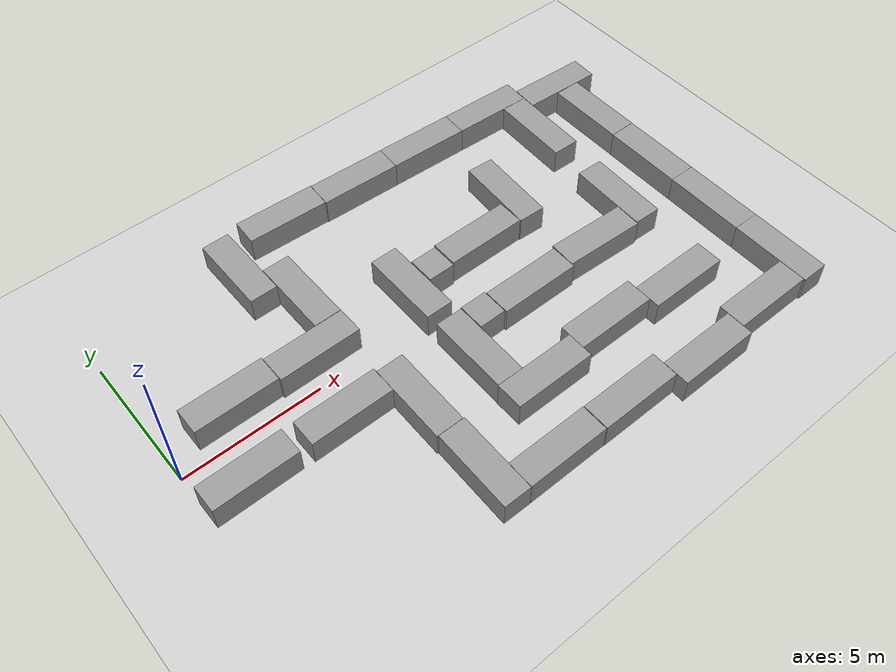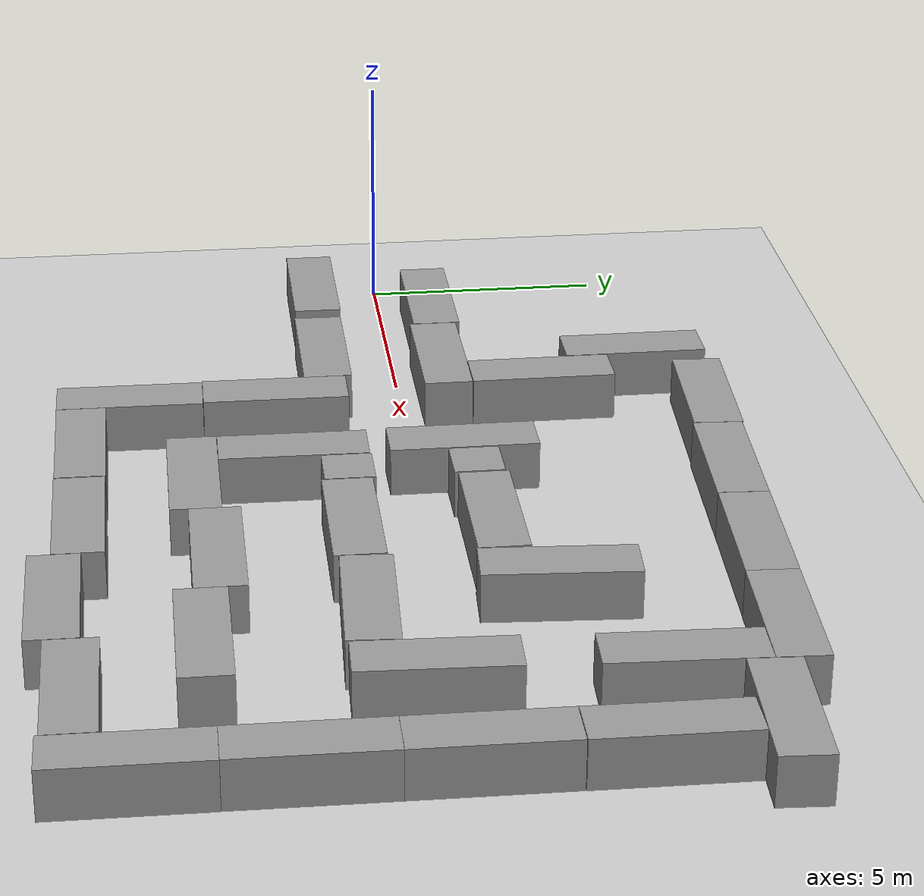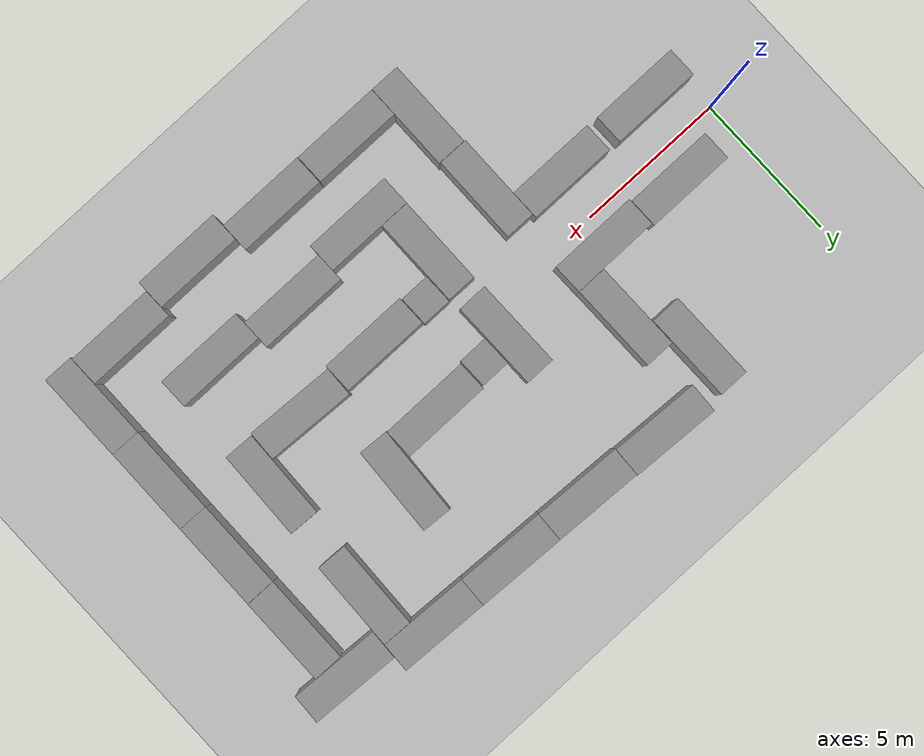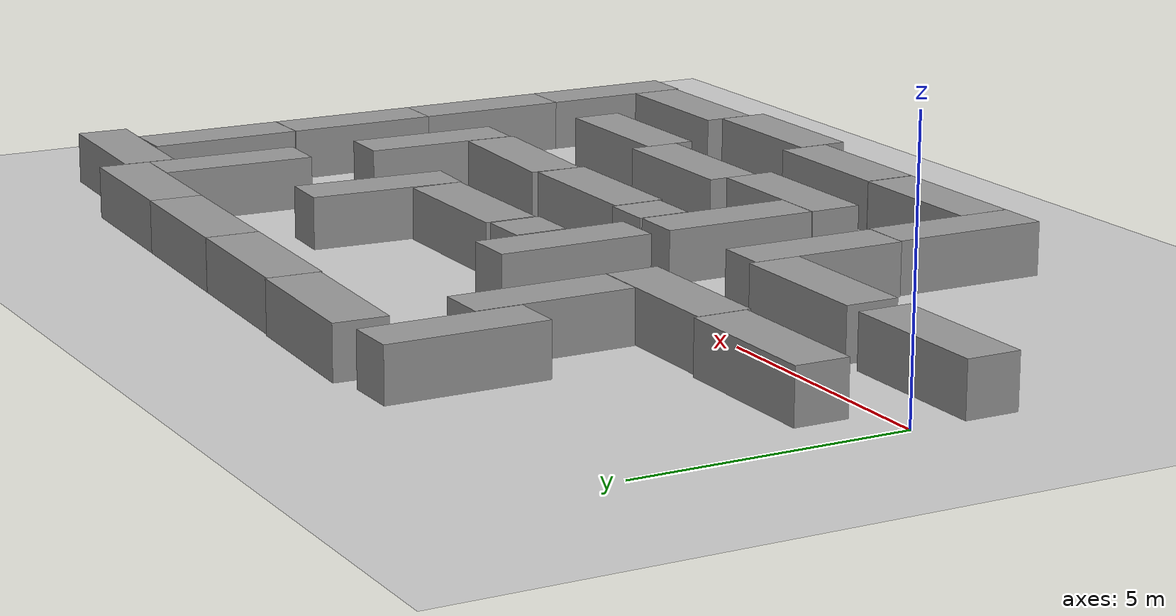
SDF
<sdf version="1.6">
 <world name="default">
  <light name="sun" type="directional">
   <pose>0 0 10 0 -0 0</pose>
   <diffuse>0.8 0.8 0.8 1</diffuse>
   <specular>0.2 0.2 0.2 1</specular>
   <attenuation>
    <range>1000</range>
    <constant>0.9</constant>
    <linear>0.01</linear>
    <quadratic>0.001</quadratic>
   </attenuation>
   <direction>-0.5 0.1 -0.9</direction>
  </light>
  <model name="ground_plane">
   <static>1</static>
   <link name="link">
    <collision name="collision">
     <geometry><plane><normal>0 0 1</normal><size>100 100</size></plane></geometry>
     <surface>
      <contact><collide_bitmask>65535</collide_bitmask></contact>
      <friction><ode><mu>100</mu><mu2>50</mu2></ode></friction>
     </surface>
    </collision>
    <visual name="visual">
     <cast_shadows>0</cast_shadows>
     <geometry><plane><normal>0 0 1</normal><size>100 100</size></plane></geometry>
     <material>
      <script><uri>file://media/materials/scripts/gazebo.material</uri><name>Gazebo/Grey</name></script>
     </material>
    </visual>
   </link>
  </model>
  <gravity>0 0 -9.8</gravity>
  <magnetic_field>6e-06 2.3e-05 -4.2e-05</magnetic_field>
  <atmosphere type="adiabatic"/>
  <physics name="default_physics" default="0" type="ode">
   <max_step_size>0.001</max_step_size>
   <real_time_factor>1</real_time_factor>
   <real_time_update_rate>1000</real_time_update_rate>
  </physics>
  <scene><ambient>0.4 0.4 0.4 1</ambient><background>0.7 0.7 0.7 1</background><shadows>1</shadows></scene>
  <audio><device>default</device></audio>
  <spherical_coordinates>
   <surface_model>EARTH_WGS84</surface_model>
   <latitude_deg>0</latitude_deg>
   <longitude_deg>0</longitude_deg>
   <elevation>0</elevation>
   <heading_deg>0</heading_deg>
  </spherical_coordinates>
  <model name="unit_box">
   <pose>1.49315 -1.52247 0.499996 -5e-06 1e-06 1e-06</pose>
   <link name="link">
    <inertial>
     <mass>1</mass>
     <inertia>
      <ixx>0.166667</ixx>
      <ixy>0</ixy>
      <ixz>0</ixz>
      <iyy>0.166667</iyy>
      <iyz>0</iyz>
      <izz>0.166667</izz>
     </inertia>
    </inertial>
    <collision name="collision"><geometry><box><size>2.9881 1 1</size></box></geometry></collision>
    <visual name="visual">
     <geometry><box><size>2.9881 1 1</size></box></geometry>
     <material>
      <script><name>Gazebo/Grey</name><uri>file://media/materials/scripts/gazebo.material</uri></script>
     </material>
    </visual>
   </link>
  </model>
  <model name="unit_box_clone">
   <pose>4.86785 -1.55551 0.499828 0 0.000115 -0.000361</pose>
   <link name="link">
    <inertial>
     <mass>1</mass>
     <inertia>
      <ixx>0.166667</ixx>
      <ixy>0</ixy>
      <ixz>0</ixz>
      <iyy>0.166667</iyy>
      <iyz>0</iyz>
      <izz>0.166667</izz>
     </inertia>
    </inertial>
    <collision name="collision"><geometry><box><size>2.9881 1 1</size></box></geometry></collision>
    <visual name="visual">
     <geometry><box><size>2.9881 1 1</size></box></geometry>
     <material>
      <script><name>Gazebo/Grey</name><uri>file://media/materials/scripts/gazebo.material</uri></script>
     </material>
    </visual>
   </link>
  </model>
  <model name="unit_box_clone_0">
   <pose>6.85767 -2.69091 0.5 0 0 -1.57916</pose>
   <link name="link">
    <inertial>
     <mass>1</mass>
     <inertia>
      <ixx>0.166667</ixx>
      <ixy>0</ixy>
      <ixz>0</ixz>
      <iyy>0.166667</iyy>
      <iyz>0</iyz>
      <izz>0.166667</izz>
     </inertia>
    </inertial>
    <collision name="collision"><geometry><box><size>2.9881 1 1</size></box></geometry></collision>
    <visual name="visual">
     <geometry><box><size>2.9881 1 1</size></box></geometry>
     <material>
      <script><name>Gazebo/Grey</name><uri>file://media/materials/scripts/gazebo.material</uri></script>
     </material>
    </visual>
   </link>
  </model>
  <model name="unit_box_clone_1">
   <pose>2.43646 1.00676 0.499996 -5e-06 1e-06 0.000239</pose>
   <link name="link">
    <inertial>
     <mass>1</mass>
     <inertia>
      <ixx>0.166667</ixx>
      <ixy>0</ixy>
      <ixz>0</ixz>
      <iyy>0.166667</iyy>
      <iyz>0</iyz>
      <izz>0.166667</izz>
     </inertia>
    </inertial>
    <collision name="collision"><geometry><box><size>2.9881 1 1</size></box></geometry></collision>
    <visual name="visual">
     <geometry><box><size>2.9881 1 1</size></box></geometry>
     <material>
      <script><name>Gazebo/Grey</name><uri>file://media/materials/scripts/gazebo.material</uri></script>
     </material>
    </visual>
   </link>
  </model>
  <model name="unit_box_clone_2">
   <pose>5.43761 0.926609 0.5 0 -0 0.002704</pose>
   <link name="link">
    <inertial>
     <mass>1</mass>
     <inertia>
      <ixx>0.166667</ixx>
      <ixy>0</ixy>
      <ixz>0</ixz>
      <iyy>0.166667</iyy>
      <iyz>0</iyz>
      <izz>0.166667</izz>
     </inertia>
    </inertial>
    <collision name="collision"><geometry><box><size>2.9881 1 1</size></box></geometry></collision>
    <visual name="visual">
     <geometry><box><size>2.9881 1 1</size></box></geometry>
     <material>
      <script><name>Gazebo/Grey</name><uri>file://media/materials/scripts/gazebo.material</uri></script>
     </material>
    </visual>
   </link>
  </model>
  <model name="unit_box_clone_3">
   <pose>9.38284 0.906963 0.499828 0 -0.000115 -1.56941</pose>
   <link name="link">
    <inertial>
     <mass>1</mass>
     <inertia>
      <ixx>0.166667</ixx>
      <ixy>0</ixy>
      <ixz>0</ixz>
      <iyy>0.166667</iyy>
      <iyz>0</iyz>
      <izz>0.166667</izz>
     </inertia>
    </inertial>
    <collision name="collision"><geometry><box><size>2.9881 1 1</size></box></geometry></collision>
    <visual name="visual">
     <geometry><box><size>2.9881 1 1</size></box></geometry>
     <material>
      <script><name>Gazebo/Grey</name><uri>file://media/materials/scripts/gazebo.material</uri></script>
     </material>
    </visual>
   </link>
  </model>
  <model name="unit_box_0">
   <pose>10.452 -1.47097 0.499995 0 -1e-05 -0.000894</pose>
   <link name="link">
    <inertial>
     <mass>1</mass>
     <inertia>
      <ixx>0.166667</ixx>
      <ixy>0</ixy>
      <ixz>0</ixz>
      <iyy>0.166667</iyy>
      <iyz>0</iyz>
      <izz>0.166667</izz>
     </inertia>
    </inertial>
    <collision name="collision"><geometry><box><size>1 1 1</size></box></geometry></collision>
    <visual name="visual">
     <geometry><box><size>1 1 1</size></box></geometry>
     <material>
      <script><name>Gazebo/Grey</name><uri>file://media/materials/scripts/gazebo.material</uri></script>
     </material>
    </visual>
   </link>
  </model>
  <model name="unit_box_1">
   <pose>10.4212 1.06465 0.499995 1e-05 -0 0.004146</pose>
   <link name="link">
    <inertial>
     <mass>1</mass>
     <inertia>
      <ixx>0.166667</ixx>
      <ixy>0</ixy>
      <ixz>0</ixz>
      <iyy>0.166667</iyy>
      <iyz>0</iyz>
      <izz>0.166667</izz>
     </inertia>
    </inertial>
    <collision name="collision"><geometry><box><size>1 1 1</size></box></geometry></collision>
    <visual name="visual">
     <geometry><box><size>1 1 1</size></box></geometry>
     <material>
      <script><name>Gazebo/Grey</name><uri>file://media/materials/scripts/gazebo.material</uri></script>
     </material>
    </visual>
   </link>
  </model>
  <model name="unit_box_clone_0_clone">
   <pose>12.4694 -1.53918 0.499996 -5e-06 1e-06 -0.000893</pose>
   <link name="link">
    <inertial>
     <mass>1</mass>
     <inertia>
      <ixx>0.166667</ixx>
      <ixy>0</ixy>
      <ixz>0</ixz>
      <iyy>0.166667</iyy>
      <iyz>0</iyz>
      <izz>0.166667</izz>
     </inertia>
    </inertial>
    <collision name="collision"><geometry><box><size>2.9881 1 1</size></box></geometry></collision>
    <visual name="visual">
     <geometry><box><size>2.9881 1 1</size></box></geometry>
     <material>
      <script><name>Gazebo/Grey</name><uri>file://media/materials/scripts/gazebo.material</uri></script>
     </material>
    </visual>
   </link>
  </model>
  <model name="unit_box_clone_0_clone_0">
   <pose>12.4584 1.13312 0.499996 -5e-06 1e-06 0.001256</pose>
   <link name="link">
    <inertial>
     <mass>1</mass>
     <inertia>
      <ixx>0.166667</ixx>
      <ixy>0</ixy>
      <ixz>0</ixz>
      <iyy>0.166667</iyy>
      <iyz>0</iyz>
      <izz>0.166667</izz>
     </inertia>
    </inertial>
    <collision name="collision"><geometry><box><size>2.9881 1 1</size></box></geometry></collision>
    <visual name="visual">
     <geometry><box><size>2.9881 1 1</size></box></geometry>
     <material>
      <script><name>Gazebo/Grey</name><uri>file://media/materials/scripts/gazebo.material</uri></script>
     </material>
    </visual>
   </link>
  </model>
  <model name="unit_box_clone_0_clone_1_clone">
   <pose>17.7173 3.74196 0.499828 -0 -0.000115 -1.60474</pose>
   <link name="link">
    <inertial>
     <mass>1</mass>
     <inertia>
      <ixx>0.166667</ixx>
      <ixy>0</ixy>
      <ixz>0</ixz>
      <iyy>0.166667</iyy>
      <iyz>0</iyz>
      <izz>0.166667</izz>
     </inertia>
    </inertial>
    <collision name="collision"><geometry><box><size>2.9881 1 1</size></box></geometry></collision>
    <visual name="visual">
     <geometry><box><size>2.9881 1 1</size></box></geometry>
     <material>
      <script><name>Gazebo/Grey</name><uri>file://media/materials/scripts/gazebo.material</uri></script>
     </material>
    </visual>
   </link>
  </model>
  <model name="unit_box_clone_0_clone_1_clone_0">
   <pose>17.5304 -0.539003 0.499996 8e-06 -0 -1.60496</pose>
   <link name="link">
    <inertial>
     <mass>1</mass>
     <inertia>
      <ixx>0.166667</ixx>
      <ixy>0</ixy>
      <ixz>0</ixz>
      <iyy>0.166667</iyy>
      <iyz>0</iyz>
      <izz>0.166667</izz>
     </inertia>
    </inertial>
    <collision name="collision"><geometry><box><size>2.9881 1 1</size></box></geometry></collision>
    <visual name="visual">
     <geometry><box><size>2.9881 1 1</size></box></geometry>
     <material>
      <script><name>Gazebo/Grey</name><uri>file://media/materials/scripts/gazebo.material</uri></script>
     </material>
    </visual>
   </link>
  </model>
  <model name="unit_box_clone_0_clone_clone">
   <pose>15.4824 -1.50723 0.499996 5e-06 -1e-06 -0.045635</pose>
   <link name="link">
    <inertial>
     <mass>1</mass>
     <inertia>
      <ixx>0.166667</ixx>
      <ixy>0</ixy>
      <ixz>0</ixz>
      <iyy>0.166667</iyy>
      <iyz>0</iyz>
      <izz>0.166667</izz>
     </inertia>
    </inertial>
    <collision name="collision"><geometry><box><size>2.9881 1 1</size></box></geometry></collision>
    <visual name="visual">
     <geometry><box><size>2.9881 1 1</size></box></geometry>
     <material>
      <script><name>Gazebo/Grey</name><uri>file://media/materials/scripts/gazebo.material</uri></script>
     </material>
    </visual>
   </link>
  </model>
  <model name="unit_box_clone_0_clone_1_clone_clone">
   <pose>14.5427 2.07221 0.499996 -5e-06 1e-06 -1.62796</pose>
   <link name="link">
    <inertial>
     <mass>1</mass>
     <inertia>
      <ixx>0.166667</ixx>
      <ixy>0</ixy>
      <ixz>0</ixz>
      <iyy>0.166667</iyy>
      <iyz>0</iyz>
      <izz>0.166667</izz>
     </inertia>
    </inertial>
    <collision name="collision"><geometry><box><size>2.9881 1 1</size></box></geometry></collision>
    <visual name="visual">
     <geometry><box><size>2.9881 1 1</size></box></geometry>
     <material>
      <script><name>Gazebo/Grey</name><uri>file://media/materials/scripts/gazebo.material</uri></script>
     </material>
    </visual>
   </link>
  </model>
  <model name="unit_box_clone_0_clone_1">
   <pose>9.41804 -2.48899 0.499996 5e-06 -1e-06 -1.57916</pose>
   <link name="link">
    <inertial>
     <mass>1</mass>
     <inertia>
      <ixx>0.166667</ixx>
      <ixy>0</ixy>
      <ixz>0</ixz>
      <iyy>0.166667</iyy>
      <iyz>0</iyz>
      <izz>0.166667</izz>
     </inertia>
    </inertial>
    <collision name="collision"><geometry><box><size>2.9881 1 1</size></box></geometry></collision>
    <visual name="visual">
     <geometry><box><size>2.9881 1 1</size></box></geometry>
     <material>
      <script><name>Gazebo/Grey</name><uri>file://media/materials/scripts/gazebo.material</uri></script>
     </material>
    </visual>
   </link>
  </model>
  <model name="unit_box_clone_3_clone">
   <pose>6.41712 2.9389 0.5 0 0 -1.56752</pose>
   <link name="link">
    <inertial>
     <mass>1</mass>
     <inertia>
      <ixx>0.166667</ixx>
      <ixy>0</ixy>
      <ixz>0</ixz>
      <iyy>0.166667</iyy>
      <iyz>0</iyz>
      <izz>0.166667</izz>
     </inertia>
    </inertial>
    <collision name="collision"><geometry><box><size>2.9881 1 1</size></box></geometry></collision>
    <visual name="visual">
     <geometry><box><size>2.9881 1 1</size></box></geometry>
     <material>
      <script><name>Gazebo/Grey</name><uri>file://media/materials/scripts/gazebo.material</uri></script>
     </material>
    </visual>
   </link>
  </model>
  <model name="unit_box_clone_0_clone_2">
   <pose>6.87778 -5.68946 0.5 0 -0 -1.57916</pose>
   <link name="link">
    <inertial>
     <mass>1</mass>
     <inertia>
      <ixx>0.166667</ixx>
      <ixy>0</ixy>
      <ixz>0</ixz>
      <iyy>0.166667</iyy>
      <iyz>0</iyz>
      <izz>0.166667</izz>
     </inertia>
    </inertial>
    <collision name="collision"><geometry><box><size>2.9881 1 1</size></box></geometry></collision>
    <visual name="visual">
     <geometry><box><size>2.9881 1 1</size></box></geometry>
     <material>
      <script><name>Gazebo/Grey</name><uri>file://media/materials/scripts/gazebo.material</uri></script>
     </material>
    </visual>
   </link>
  </model>
  <model name="unit_box_clone_clone">
   <pose>8.86872 -6.6872 0.499828 0 -0.000115 -0.000367</pose>
   <link name="link">
    <inertial>
     <mass>1</mass>
     <inertia>
      <ixx>0.166667</ixx>
      <ixy>0</ixy>
      <ixz>0</ixz>
      <iyy>0.166667</iyy>
      <iyz>0</iyz>
      <izz>0.166667</izz>
     </inertia>
    </inertial>
    <collision name="collision"><geometry><box><size>2.9881 1 1</size></box></geometry></collision>
    <visual name="visual">
     <geometry><box><size>2.9881 1 1</size></box></geometry>
     <material>
      <script><name>Gazebo/Grey</name><uri>file://media/materials/scripts/gazebo.material</uri></script>
     </material>
    </visual>
   </link>
  </model>
  <model name="unit_box_clone_clone_0">
   <pose>10.3923 -4.48998 0.499996 -5e-06 -1e-06 -0.000799</pose>
   <link name="link">
    <inertial>
     <mass>1</mass>
     <inertia>
      <ixx>0.166667</ixx>
      <ixy>0</ixy>
      <ixz>0</ixz>
      <iyy>0.166667</iyy>
      <iyz>0</iyz>
      <izz>0.166667</izz>
     </inertia>
    </inertial>
    <collision name="collision"><geometry><box><size>2.9881 1 1</size></box></geometry></collision>
    <visual name="visual">
     <geometry><box><size>2.9881 1 1</size></box></geometry>
     <material>
      <script><name>Gazebo/Grey</name><uri>file://media/materials/scripts/gazebo.material</uri></script>
     </material>
    </visual>
   </link>
  </model>
  <model name="unit_box_clone_clone_1">
   <pose>11.8813 -6.69839 0.5 0 0 -0.000799</pose>
   <link name="link">
    <inertial>
     <mass>1</mass>
     <inertia>
      <ixx>0.166667</ixx>
      <ixy>0</ixy>
      <ixz>0</ixz>
      <iyy>0.166667</iyy>
      <iyz>0</iyz>
      <izz>0.166667</izz>
     </inertia>
    </inertial>
    <collision name="collision"><geometry><box><size>2.9881 1 1</size></box></geometry></collision>
    <visual name="visual">
     <geometry><box><size>2.9881 1 1</size></box></geometry>
     <material>
      <script><name>Gazebo/Grey</name><uri>file://media/materials/scripts/gazebo.material</uri></script>
     </material>
    </visual>
   </link>
  </model>
  <model name="unit_box_clone_clone_2">
   <pose>13.3813 -4.13564 0.499996 -5e-06 1e-06 -0.0008</pose>
   <link name="link">
    <inertial>
     <mass>1</mass>
     <inertia>
      <ixx>0.166667</ixx>
      <ixy>0</ixy>
      <ixz>0</ixz>
      <iyy>0.166667</iyy>
      <iyz>0</iyz>
      <izz>0.166667</izz>
     </inertia>
    </inertial>
    <collision name="collision"><geometry><box><size>2.9881 1 1</size></box></geometry></collision>
    <visual name="visual">
     <geometry><box><size>2.9881 1 1</size></box></geometry>
     <material>
      <script><name>Gazebo/Grey</name><uri>file://media/materials/scripts/gazebo.material</uri></script>
     </material>
    </visual>
   </link>
  </model>
  <model name="unit_box_clone_clone_3">
   <pose>16.3709 -4.50462 0.5 0 -0 -0.0008</pose>
   <link name="link">
    <inertial>
     <mass>1</mass>
     <inertia>
      <ixx>0.166667</ixx>
      <ixy>0</ixy>
      <ixz>0</ixz>
      <iyy>0.166667</iyy>
      <iyz>0</iyz>
      <izz>0.166667</izz>
     </inertia>
    </inertial>
    <collision name="collision"><geometry><box><size>2.9881 1 1</size></box></geometry></collision>
    <visual name="visual">
     <geometry><box><size>2.9881 1 1</size></box></geometry>
     <material>
      <script><name>Gazebo/Grey</name><uri>file://media/materials/scripts/gazebo.material</uri></script>
     </material>
    </visual>
   </link>
  </model>
  <model name="unit_box_clone_clone_4">
   <pose>14.8791 -7.13999 0.499828 0 0.000115 -0.000296</pose>
   <link name="link">
    <inertial>
     <mass>1</mass>
     <inertia>
      <ixx>0.166667</ixx>
      <ixy>0</ixy>
      <ixz>0</ixz>
      <iyy>0.166667</iyy>
      <iyz>0</iyz>
      <izz>0.166667</izz>
     </inertia>
    </inertial>
    <collision name="collision"><geometry><box><size>2.9881 1 1</size></box></geometry></collision>
    <visual name="visual">
     <geometry><box><size>2.9881 1 1</size></box></geometry>
     <material>
      <script><name>Gazebo/Grey</name><uri>file://media/materials/scripts/gazebo.material</uri></script>
     </material>
    </visual>
   </link>
  </model>
  <model name="unit_box_clone_clone_5">
   <pose>17.8772 -6.80086 0.499996 5e-06 -1e-06 -0.000502</pose>
   <link name="link">
    <inertial>
     <mass>1</mass>
     <inertia>
      <ixx>0.166667</ixx>
      <ixy>0</ixy>
      <ixz>0</ixz>
      <iyy>0.166667</iyy>
      <iyz>0</iyz>
      <izz>0.166667</izz>
     </inertia>
    </inertial>
    <collision name="collision"><geometry><box><size>2.9881 1 1</size></box></geometry></collision>
    <visual name="visual">
     <geometry><box><size>2.9881 1 1</size></box></geometry>
     <material>
      <script><name>Gazebo/Grey</name><uri>file://media/materials/scripts/gazebo.material</uri></script>
     </material>
    </visual>
   </link>
  </model>
  <model name="unit_box_clone_0_clone_2_clone">
   <pose>19.8871 -5.87422 0.499828 -0 0.000115 -1.57741</pose>
   <link name="link">
    <inertial>
     <mass>1</mass>
     <inertia>
      <ixx>0.166667</ixx>
      <ixy>0</ixy>
      <ixz>0</ixz>
      <iyy>0.166667</iyy>
      <iyz>0</iyz>
      <izz>0.166667</izz>
     </inertia>
    </inertial>
    <collision name="collision"><geometry><box><size>2.9881 1 1</size></box></geometry></collision>
    <visual name="visual">
     <geometry><box><size>2.9881 1 1</size></box></geometry>
     <material>
      <script><name>Gazebo/Grey</name><uri>file://media/materials/scripts/gazebo.material</uri></script>
     </material>
    </visual>
   </link>
  </model>
  <model name="unit_box_clone_0_clone_2_clone_0">
   <pose>19.9031 -2.88535 0.5 -0 -0 -1.57795</pose>
   <link name="link">
    <inertial>
     <mass>1</mass>
     <inertia>
      <ixx>0.166667</ixx>
      <ixy>0</ixy>
      <ixz>0</ixz>
      <iyy>0.166667</iyy>
      <iyz>0</iyz>
      <izz>0.166667</izz>
     </inertia>
    </inertial>
    <collision name="collision"><geometry><box><size>2.9881 1 1</size></box></geometry></collision>
    <visual name="visual">
     <geometry><box><size>2.9881 1 1</size></box></geometry>
     <material>
      <script><name>Gazebo/Grey</name><uri>file://media/materials/scripts/gazebo.material</uri></script>
     </material>
    </visual>
   </link>
  </model>
  <model name="unit_box_clone_0_clone_2_clone_1">
   <pose>19.923 0.103331 0.499828 -0 -0.000115 -1.57761</pose>
   <link name="link">
    <inertial>
     <mass>1</mass>
     <inertia>
      <ixx>0.166667</ixx>
      <ixy>0</ixy>
      <ixz>0</ixz>
      <iyy>0.166667</iyy>
      <iyz>0</iyz>
      <izz>0.166667</izz>
     </inertia>
    </inertial>
    <collision name="collision"><geometry><box><size>2.9881 1 1</size></box></geometry></collision>
    <visual name="visual">
     <geometry><box><size>2.9881 1 1</size></box></geometry>
     <material>
      <script><name>Gazebo/Grey</name><uri>file://media/materials/scripts/gazebo.material</uri></script>
     </material>
    </visual>
   </link>
  </model>
  <model name="unit_box_clone_0_clone_2_clone_2">
   <pose>19.9469 3.10089 0.499828 -0 -0.000115 -1.57658</pose>
   <link name="link">
    <inertial>
     <mass>1</mass>
     <inertia>
      <ixx>0.166667</ixx>
      <ixy>0</ixy>
      <ixz>0</ixz>
      <iyy>0.166667</iyy>
      <iyz>0</iyz>
      <izz>0.166667</izz>
     </inertia>
    </inertial>
    <collision name="collision"><geometry><box><size>2.9881 1 1</size></box></geometry></collision>
    <visual name="visual">
     <geometry><box><size>2.9881 1 1</size></box></geometry>
     <material>
      <script><name>Gazebo/Grey</name><uri>file://media/materials/scripts/gazebo.material</uri></script>
     </material>
    </visual>
   </link>
  </model>
  <model name="unit_box_clone_0_clone_clone_clone">
   <pose>19.7745 5.12927 0.499996 5e-06 -1e-06 -0.049045</pose>
   <link name="link">
    <inertial>
     <mass>1</mass>
     <inertia>
      <ixx>0.166667</ixx>
      <ixy>0</ixy>
      <ixz>0</ixz>
      <iyy>0.166667</iyy>
      <iyz>0</iyz>
      <izz>0.166667</izz>
     </inertia>
    </inertial>
    <collision name="collision"><geometry><box><size>2.9881 1 1</size></box></geometry></collision>
    <visual name="visual">
     <geometry><box><size>2.9881 1 1</size></box></geometry>
     <material>
      <script><name>Gazebo/Grey</name><uri>file://media/materials/scripts/gazebo.material</uri></script>
     </material>
    </visual>
   </link>
  </model>
  <model name="unit_box_clone_0_clone_clone_clone_0">
   <pose>16.7977 5.78349 0.5 0 -0 -0.042236</pose>
   <link name="link">
    <inertial>
     <mass>1</mass>
     <inertia>
      <ixx>0.166667</ixx>
      <ixy>0</ixy>
      <ixz>0</ixz>
      <iyy>0.166667</iyy>
      <iyz>0</iyz>
      <izz>0.166667</izz>
     </inertia>
    </inertial>
    <collision name="collision"><geometry><box><size>2.9881 1 1</size></box></geometry></collision>
    <visual name="visual">
     <geometry><box><size>2.9881 1 1</size></box></geometry>
     <material>
      <script><name>Gazebo/Grey</name><uri>file://media/materials/scripts/gazebo.material</uri></script>
     </material>
    </visual>
   </link>
  </model>
  <model name="unit_box_clone_0_clone_clone_clone_1">
   <pose>13.8121 5.91386 0.5 -0 -0 -0.042663</pose>
   <link name="link">
    <inertial>
     <mass>1</mass>
     <inertia>
      <ixx>0.166667</ixx>
      <ixy>0</ixy>
      <ixz>0</ixz>
      <iyy>0.166667</iyy>
      <iyz>0</iyz>
      <izz>0.166667</izz>
     </inertia>
    </inertial>
    <collision name="collision"><geometry><box><size>2.9881 1 1</size></box></geometry></collision>
    <visual name="visual">
     <geometry><box><size>2.9881 1 1</size></box></geometry>
     <material>
      <script><name>Gazebo/Grey</name><uri>file://media/materials/scripts/gazebo.material</uri></script>
     </material>
    </visual>
   </link>
  </model>
  <model name="unit_box_clone_0_clone_clone_clone_2">
   <pose>10.8218 6.03787 0.499828 0 -0.000115 -0.041933</pose>
   <link name="link">
    <inertial>
     <mass>1</mass>
     <inertia>
      <ixx>0.166667</ixx>
      <ixy>0</ixy>
      <ixz>0</ixz>
      <iyy>0.166667</iyy>
      <iyz>0</iyz>
      <izz>0.166667</izz>
     </inertia>
    </inertial>
    <collision name="collision"><geometry><box><size>2.9881 1 1</size></box></geometry></collision>
    <visual name="visual">
     <geometry><box><size>2.9881 1 1</size></box></geometry>
     <material>
      <script><name>Gazebo/Grey</name><uri>file://media/materials/scripts/gazebo.material</uri></script>
     </material>
    </visual>
   </link>
  </model>
  <model name="unit_box_clone_0_clone_clone_clone_3">
   <pose>7.83351 6.19691 0.5 0 -0 -0.045481</pose>
   <link name="link">
    <inertial>
     <mass>1</mass>
     <inertia>
      <ixx>0.166667</ixx>
      <ixy>0</ixy>
      <ixz>0</ixz>
      <iyy>0.166667</iyy>
      <iyz>0</iyz>
      <izz>0.166667</izz>
     </inertia>
    </inertial>
    <collision name="collision"><geometry><box><size>2.9881 1 1</size></box></geometry></collision>
    <visual name="visual">
     <geometry><box><size>2.9881 1 1</size></box></geometry>
     <material>
      <script><name>Gazebo/Grey</name><uri>file://media/materials/scripts/gazebo.material</uri></script>
     </material>
    </visual>
   </link>
  </model>
  <model name="unit_box_clone_3_clone_clone">
   <pose>5.38917 5.06612 0.499995 -5e-06 2e-06 -1.56752</pose>
   <link name="link">
    <inertial>
     <mass>1</mass>
     <inertia>
      <ixx>0.166667</ixx>
      <ixy>0</ixy>
      <ixz>0</ixz>
      <iyy>0.166667</iyy>
      <iyz>0</iyz>
      <izz>0.166667</izz>
     </inertia>
    </inertial>
    <collision name="collision"><geometry><box><size>2.9881 1 1</size></box></geometry></collision>
    <visual name="visual">
     <geometry><box><size>2.9881 1 1</size></box></geometry>
     <material>
      <script><name>Gazebo/Grey</name><uri>file://media/materials/scripts/gazebo.material</uri></script>
     </material>
    </visual>
   </link>
  </model>
 </world>
</sdf>
